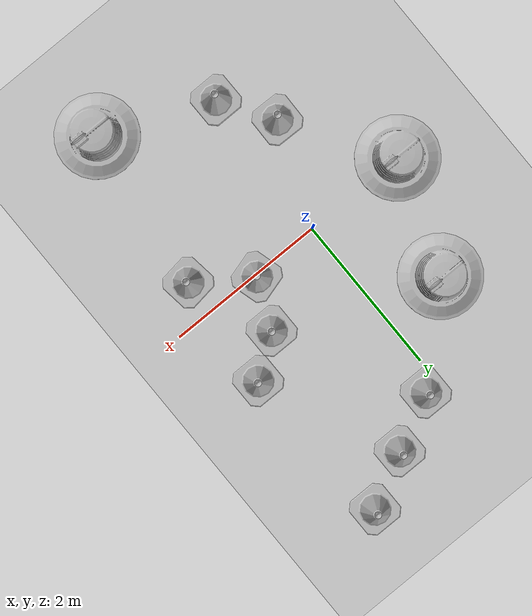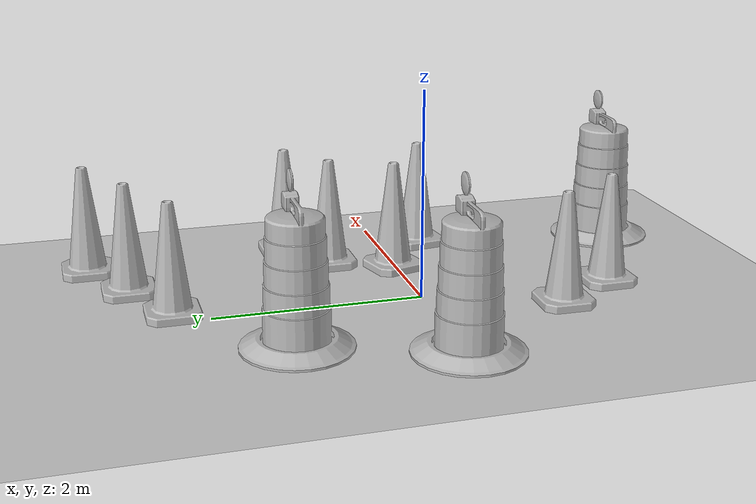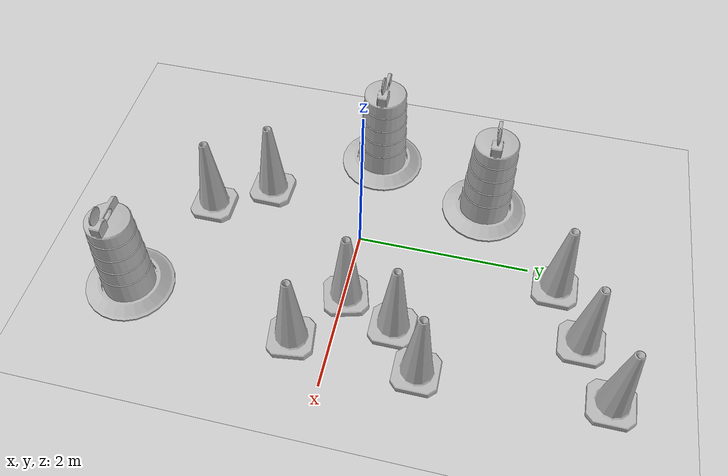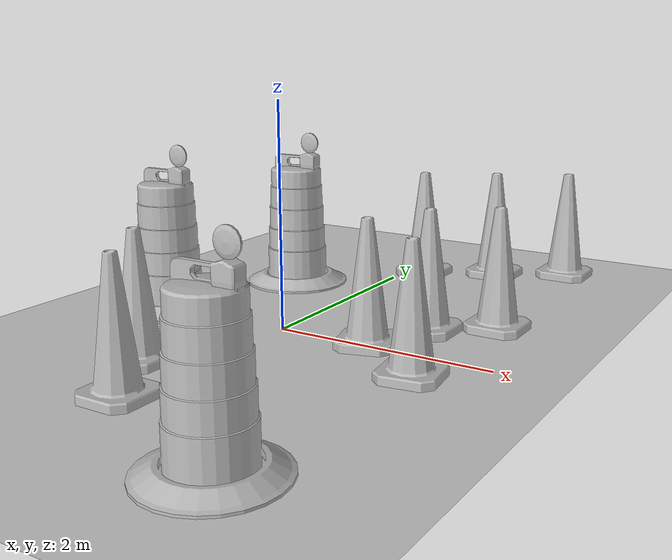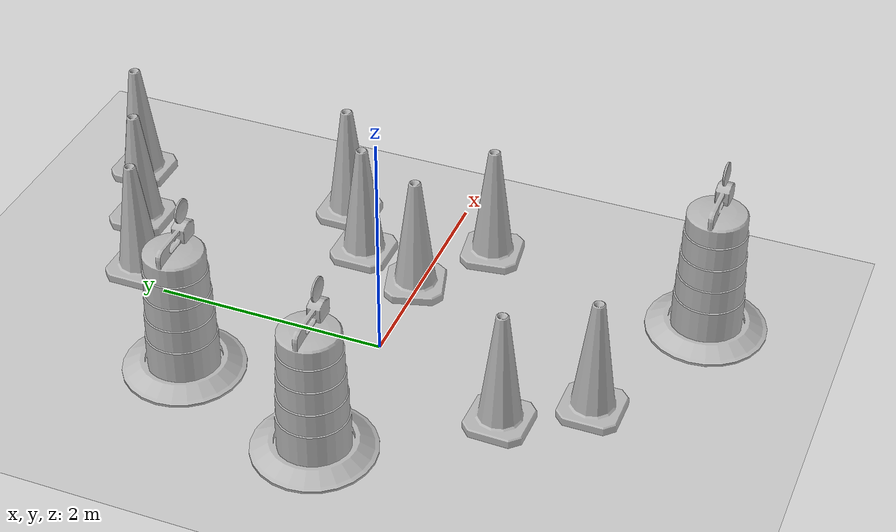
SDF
<sdf version="1.7">
 <world name="default">
  <light name="sun" type="directional">
   <pose>0 0 10 0 -0 0</pose>
   <diffuse>0.8 0.8 0.8 1</diffuse>
   <specular>0.2 0.2 0.2 1</specular>
   <attenuation>
    <range>1000</range>
    <constant>0.9</constant>
    <linear>0.01</linear>
    <quadratic>0.001</quadratic>
   </attenuation>
   <direction>-0.5 0.1 -0.9</direction>
   <spot><inner_angle>0</inner_angle><outer_angle>0</outer_angle><falloff>0</falloff></spot>
  </light>
  <model name="ground_plane">
   <static>1</static>
   <link name="link">
    <collision name="collision">
     <geometry><plane><normal>0 0 1</normal><size>100 100</size></plane></geometry>
     <surface>
      <contact><collide_bitmask>65535</collide_bitmask></contact>
      <friction><ode><mu>100</mu><mu2>50</mu2></ode></friction>
     </surface>
    </collision>
    <visual name="visual">
     <cast_shadows>0</cast_shadows>
     <geometry><plane><normal>0 0 1</normal><size>100 100</size></plane></geometry>
     <material>
      <script><uri>file://media/materials/scripts/gazebo.material</uri><name>Gazebo/Grey</name></script>
     </material>
    </visual>
   </link>
  </model>
  <gravity>0 0 -9.8</gravity>
  <magnetic_field>6e-06 2.3e-05 -4.2e-05</magnetic_field>
  <atmosphere type="adiabatic"/>
  <physics type="ode">
   <max_step_size>0.001</max_step_size>
   <real_time_factor>1</real_time_factor>
   <real_time_update_rate>1000</real_time_update_rate>
  </physics>
  <scene><ambient>0.4 0.4 0.4 1</ambient><background>0.7 0.7 0.7 1</background><shadows>1</shadows></scene>
  <spherical_coordinates>
   <surface_model>EARTH_WGS84</surface_model>
   <latitude_deg>0</latitude_deg>
   <longitude_deg>0</longitude_deg>
   <elevation>0</elevation>
   <heading_deg>0</heading_deg>
  </spherical_coordinates>
  <model name="Construction Barrel">
   <link name="link">
    <inertial>
     <pose>0 0 0.4 0 -0 0</pose>
     <mass>500</mass>
     <inertia><ixx>51.2096</ixx><iyy>51.2096</iyy><izz>25</izz><ixy>0</ixy><ixz>0</ixz><iyz>0</iyz></inertia>
    </inertial>
    <collision name="collision">
     <geometry><mesh><uri>model://construction_barrel/meshes/construction_barrel.dae</uri></mesh></geometry>
    </collision>
    <visual name="visual">
     <geometry><mesh><uri>model://construction_barrel/meshes/construction_barrel.dae</uri></mesh></geometry>
    </visual>
   </link>
   <pose>-1.29962 -0.000168 -2e-06 1e-06 8e-06 -2.7e-05</pose>
  </model>
  <model name="Construction Barrel_0">
   <link name="link">
    <inertial>
     <pose>0 0 0.4 0 -0 0</pose>
     <mass>500</mass>
     <inertia><ixx>51.2096</ixx><iyy>51.2096</iyy><izz>25</izz><ixy>0</ixy><ixz>0</ixz><iyz>0</iyz></inertia>
    </inertial>
    <collision name="collision">
     <geometry><mesh><uri>model://construction_barrel/meshes/construction_barrel.dae</uri></mesh></geometry>
    </collision>
    <visual name="visual">
     <geometry><mesh><uri>model://construction_barrel/meshes/construction_barrel.dae</uri></mesh></geometry>
    </visual>
   </link>
   <pose>-0.805956 1.38354 -1e-06 3e-06 7e-06 -5.7e-05</pose>
  </model>
  <model name="Construction Cone">
   <link name="link">
    <collision name="collision">
     <geometry>
      <mesh><scale>10 10 10</scale><uri>model://construction_cone/meshes/construction_cone.dae</uri></mesh>
     </geometry>
    </collision>
    <visual name="visual">
     <geometry>
      <mesh><scale>10 10 10</scale><uri>model://construction_cone/meshes/construction_cone.dae</uri></mesh>
     </geometry>
    </visual>
    <inertial>
     <inertia><ixx>1</ixx><ixy>0</ixy><ixz>0</ixz><iyy>1</iyy><iyz>0</iyz><izz>1</izz></inertia>
     <mass>1</mass>
    </inertial>
   </link>
   <pose>-0.497824 -1.23548 -0 0 0 -0.0193</pose>
  </model>
  <model name="Construction Cone_0">
   <link name="link">
    <collision name="collision">
     <geometry>
      <mesh><scale>10 10 10</scale><uri>model://construction_cone/meshes/construction_cone.dae</uri></mesh>
     </geometry>
    </collision>
    <visual name="visual">
     <geometry>
      <mesh><scale>10 10 10</scale><uri>model://construction_cone/meshes/construction_cone.dae</uri></mesh>
     </geometry>
    </visual>
    <inertial>
     <inertia><ixx>1</ixx><ixy>0</ixy><ixz>0</ixz><iyy>1</iyy><iyz>0</iyz><izz>1</izz></inertia>
     <mass>1</mass>
    </inertial>
   </link>
   <pose>-0.090985 -1.86952 -1e-05 -1e-06 -0 0.00549</pose>
  </model>
  <model name="Construction Barrel_1">
   <link name="link">
    <inertial>
     <pose>0 0 0.4 0 -0 0</pose>
     <mass>500</mass>
     <inertia><ixx>51.2096</ixx><iyy>51.2096</iyy><izz>25</izz><ixy>0</ixy><ixz>0</ixz><iyz>0</iyz></inertia>
    </inertial>
    <collision name="collision">
     <geometry><mesh><uri>model://construction_barrel/meshes/construction_barrel.dae</uri></mesh></geometry>
    </collision>
    <visual name="visual">
     <geometry><mesh><uri>model://construction_barrel/meshes/construction_barrel.dae</uri></mesh></geometry>
    </visual>
   </link>
   <pose>1.24694 -2.42744 -1e-06 3e-06 7e-06 -4.5e-05</pose>
  </model>
  <model name="Construction Cone_1">
   <link name="link">
    <collision name="collision">
     <geometry>
      <mesh><scale>10 10 10</scale><uri>model://construction_cone/meshes/construction_cone.dae</uri></mesh>
     </geometry>
    </collision>
    <visual name="visual">
     <geometry>
      <mesh><scale>10 10 10</scale><uri>model://construction_cone/meshes/construction_cone.dae</uri></mesh>
     </geometry>
    </visual>
    <inertial>
     <inertia><ixx>1</ixx><ixy>0</ixy><ixz>0</ixz><iyy>1</iyy><iyz>0</iyz><izz>1</izz></inertia>
     <mass>1</mass>
    </inertial>
   </link>
   <pose>0.190171 2.32432 -0 -0 -0 -0</pose>
  </model>
  <model name="Construction Cone_2">
   <link name="link">
    <collision name="collision">
     <geometry>
      <mesh><scale>10 10 10</scale><uri>model://construction_cone/meshes/construction_cone.dae</uri></mesh>
     </geometry>
    </collision>
    <visual name="visual">
     <geometry>
      <mesh><scale>10 10 10</scale><uri>model://construction_cone/meshes/construction_cone.dae</uri></mesh>
     </geometry>
    </visual>
    <inertial>
     <inertia><ixx>1</ixx><ixy>0</ixy><ixz>0</ixz><iyy>1</iyy><iyz>0</iyz><izz>1</izz></inertia>
     <mass>1</mass>
    </inertial>
   </link>
   <pose>0.858137 2.65735 -8e-06 3e-06 1e-06 -0</pose>
  </model>
  <model name="Construction Cone_3">
   <link name="link">
    <collision name="collision">
     <geometry>
      <mesh><scale>10 10 10</scale><uri>model://construction_cone/meshes/construction_cone.dae</uri></mesh>
     </geometry>
    </collision>
    <visual name="visual">
     <geometry>
      <mesh><scale>10 10 10</scale><uri>model://construction_cone/meshes/construction_cone.dae</uri></mesh>
     </geometry>
    </visual>
    <inertial>
     <inertia><ixx>1</ixx><ixy>0</ixy><ixz>0</ixz><iyy>1</iyy><iyz>0</iyz><izz>1</izz></inertia>
     <mass>1</mass>
    </inertial>
   </link>
   <pose>1.5126 2.9975 -0 0 -1e-06 0</pose>
  </model>
  <model name="Construction Cone_4">
   <link name="link">
    <collision name="collision">
     <geometry>
      <mesh><scale>10 10 10</scale><uri>model://construction_cone/meshes/construction_cone.dae</uri></mesh>
     </geometry>
    </collision>
    <visual name="visual">
     <geometry>
      <mesh><scale>10 10 10</scale><uri>model://construction_cone/meshes/construction_cone.dae</uri></mesh>
     </geometry>
    </visual>
    <inertial>
     <inertia><ixx>1</ixx><ixy>0</ixy><ixz>0</ixz><iyy>1</iyy><iyz>0</iyz><izz>1</izz></inertia>
     <mass>1</mass>
    </inertial>
   </link>
   <pose>1.5128 -0.429602 -0 0 -0 0.135678</pose>
  </model>
  <model name="Construction Cone_5">
   <link name="link">
    <collision name="collision">
     <geometry>
      <mesh><scale>10 10 10</scale><uri>model://construction_cone/meshes/construction_cone.dae</uri></mesh>
     </geometry>
    </collision>
    <visual name="visual">
     <geometry>
      <mesh><scale>10 10 10</scale><uri>model://construction_cone/meshes/construction_cone.dae</uri></mesh>
     </geometry>
    </visual>
    <inertial>
     <inertia><ixx>1</ixx><ixy>0</ixy><ixz>0</ixz><iyy>1</iyy><iyz>0</iyz><izz>1</izz></inertia>
     <mass>1</mass>
    </inertial>
   </link>
   <pose>0.853061 0.027325 -1e-05 0 -0 0.276712</pose>
  </model>
  <model name="Construction Cone_6">
   <link name="link">
    <collision name="collision">
     <geometry>
      <mesh><scale>10 10 10</scale><uri>model://construction_cone/meshes/construction_cone.dae</uri></mesh>
     </geometry>
    </collision>
    <visual name="visual">
     <geometry>
      <mesh><scale>10 10 10</scale><uri>model://construction_cone/meshes/construction_cone.dae</uri></mesh>
     </geometry>
    </visual>
    <inertial>
     <inertia><ixx>1</ixx><ixy>0</ixy><ixz>0</ixz><iyy>1</iyy><iyz>0</iyz><izz>1</izz></inertia>
     <mass>1</mass>
    </inertial>
   </link>
   <pose>1.11978 0.622369 -0 0 -0 0</pose>
  </model>
  <model name="Construction Cone_7">
   <link name="link">
    <collision name="collision">
     <geometry>
      <mesh><scale>10 10 10</scale><uri>model://construction_cone/meshes/construction_cone.dae</uri></mesh>
     </geometry>
    </collision>
    <visual name="visual">
     <geometry>
      <mesh><scale>10 10 10</scale><uri>model://construction_cone/meshes/construction_cone.dae</uri></mesh>
     </geometry>
    </visual>
    <inertial>
     <inertia><ixx>1</ixx><ixy>0</ixy><ixz>0</ixz><iyy>1</iyy><iyz>0</iyz><izz>1</izz></inertia>
     <mass>1</mass>
    </inertial>
   </link>
   <pose>1.61284 0.974656 -0 0 -0 0</pose>
  </model>
 </world>
</sdf>
